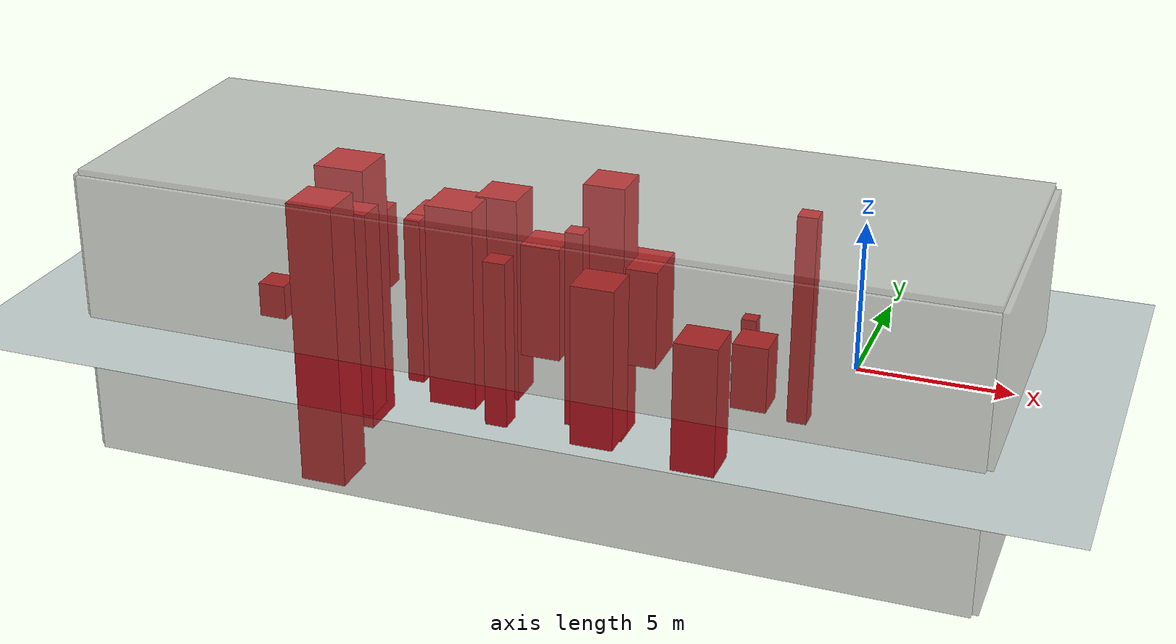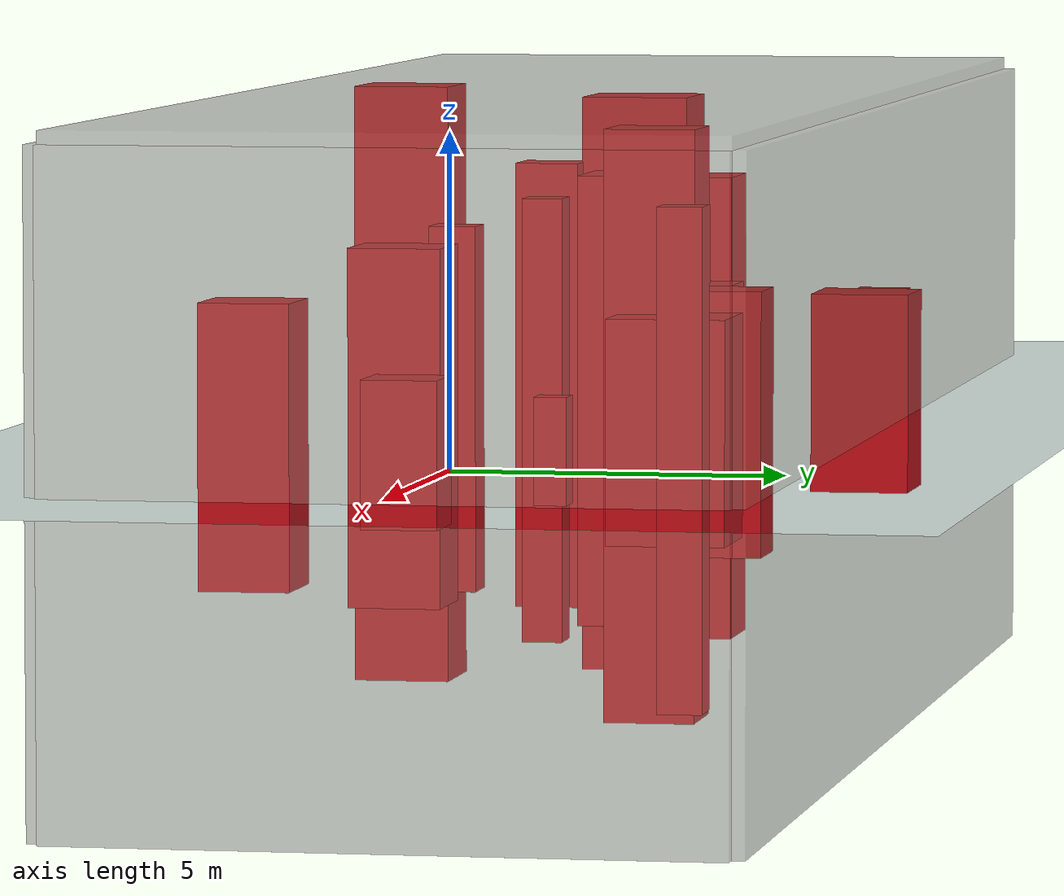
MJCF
<mujoco model="Skydio X2 scene">

  <statistic center="0 0 0.1" extent="2.0" meansize=".05"/>

  <visual>
    <headlight diffuse="0.6 0.6 0.6" ambient="0.3 0.3 0.3" specular="0 0 0"/>
    <rgba haze="0.15 0.25 0.35 1"/>
    <global azimuth="-20" elevation="-20" ellipsoidinertia="true"/>
  </visual>

  <asset>
    <texture type="skybox" builtin="gradient" rgb1="0.3 0.5 0.7" rgb2="0 0 0" width="512" height="3072"/>
    <texture type="2d" name="groundplane" builtin="checker" mark="edge" rgb1="0.2 0.3 0.4" rgb2="0.1 0.2 0.3"
      markrgb="0.8 0.8 0.8" width="300" height="300"/>
    <material name="groundplane" texture="groundplane" texuniform="true" texrepeat="5 5" reflectance="0.2"/>
  </asset>

  <worldbody>
    <light pos="0 0 1.5" dir="0 0 -1" directional="true"/>
    <geom name="floor" size="0 0 0.05" type="plane" material="groundplane"/>
    <geom name="walls_front" type="box" pos="5 0 0" size="0.2 5 5" rgba="0.5 0.5 0.5 0.5" contype="2" conaffinity="1"/>
    <geom name="walls_left" type="box" pos="-10 5 0" size="15 0.2 5" rgba="0.5 0.5 0.5 0.5" contype="2" conaffinity="1"/>
    <geom name="walls_right" type="box" pos="-10 -5 0" size="15 0.2 5" rgba="0.5 0.5 0.5 0.5" contype="2" conaffinity="1"/>
    <geom name="walls_back" type="box" pos="-25 0 0" size="0.2 5 5" rgba="0.5 0.5 0.5 0.5" contype="2" conaffinity="1"/>
    <geom name="walls_ceiling" type="box" pos="-10 0 5" size="15 5 0.2" rgba="0.5 0.5 0.5 0.5" contype="2" conaffinity="1"/>

    <body name="goal" mocap="true" pos="-21.575131420539687 3.867463229606937 3.2702755185782406">
      <geom type="sphere" size="0.1" contype="0" conaffinity="0" rgba="0 1 0 .5"/>
    </body>
    <geom name="box0" type="box" pos="-18.448940821631126 3.7814052746494786 0" size="0.42777096109334745 0.42777096109334745 1.536643463411234" rgba="1 0 0 1"/>
<geom name="box1" type="box" pos="-11.231636853009144 1.756981143490341 0" size="0.7034970974208901 0.7034970974208901 2.0697585984983475" rgba="1 0 0 1"/>
<geom name="box2" type="box" pos="-7.891192131036135 -2.3072289463082463 0" size="0.7342321117493771 0.7342321117493771 2.8251946174292204" rgba="1 0 0 1"/>
<geom name="box3" type="box" pos="-3.768835164907159 0.846180698193173 0" size="0.24971651910833562 0.24971651910833562 0.8250055702595454" rgba="1 0 0 1"/>
<geom name="box4" type="box" pos="-15.279635989941848 -0.09424609189910793 0" size="0.2889971464951446 0.2889971464951446 3.0155937573593867" rgba="1 0 0 1"/>
<geom name="box5" type="box" pos="-17.58790053882466 -0.14253541764581623 0" size="0.8856169511328091 0.8856169511328091 4.804841465317817" rgba="1 0 0 1"/>
<geom name="box6" type="box" pos="-8.003747366581058 2.0043108041814612 0" size="0.9386005607917463 0.9386005607917463 1.7711447470667818" rgba="1 0 0 1"/>
<geom name="box7" type="box" pos="-3.02704468610278 -1.2775445049818668 0" size="0.586098418181297 0.586098418181297 1.1319518574115384" rgba="1 0 0 1"/>
<geom name="box8" type="box" pos="-9.471605111422162 2.60454313389424 0" size="0.6306473890721551 0.6306473890721551 2.104450129121912" rgba="1 0 0 1"/>
<geom name="box9" type="box" pos="-13.897545928587778 0.39972101261497617 0" size="0.8521080647528378 0.8521080647528378 3.681600383159504" rgba="1 0 0 1"/>
<geom name="box10" type="box" pos="-16.231032082795796 3.842304178310994 0" size="0.8071401810426038 0.8071401810426038 1.6379001101715058" rgba="1 0 0 1"/>
<geom name="box11" type="box" pos="-11.424054690245129 -2.1417364371918595 0" size="0.3824193009376929 0.3824193009376929 2.950692255244024" rgba="1 0 0 1"/>
<geom name="box12" type="box" pos="-12.689424616859421 1.524589297021552 0" size="0.7361555769348498 0.7361555769348498 3.730665600063762" rgba="1 0 0 1"/>
<geom name="box13" type="box" pos="-9.390933461200442 -0.3034494149512632 0" size="0.31744870448016177 0.31744870448016177 3.522884478622043" rgba="1 0 0 1"/>
<geom name="box14" type="box" pos="-4.009270025621994 -3.857203738051342 0" size="0.7099240484754745 0.7099240484754745 2.2033477892875335" rgba="1 0 0 1"/>
<geom name="box15" type="box" pos="-16.780488968413092 -3.972170391836264 0" size="0.7931760980357219 0.7931760980357219 4.985681338078421" rgba="1 0 0 1"/>
<geom name="box16" type="box" pos="-2.504985054672069 3.0547575379904632 0" size="0.3440388965592005 0.3440388965592005 3.803572341318183" rgba="1 0 0 1"/>
<geom name="box17" type="box" pos="-16.69301406664291 -1.5352547353386408 0" size="0.529162498449976 0.529162498449976 3.7163026403848867" rgba="1 0 0 1"/>
<geom name="box18" type="box" pos="-8.886790781705479 1.5629530593697298 0" size="0.7224553725872416 0.7224553725872416 4.670339874686693" rgba="1 0 0 1"/>
<geom name="box19" type="box" pos="-19.84770269592696 -1.5092107708302054 0" size="0.4802457839266667 0.4802457839266667 0.6061821881858214" rgba="1 0 0 1"/>

        <body name="wp1" mocap="false" pos="0.0 0.0 0.1">
          <geom type="sphere" size="0.08" contype="0" conaffinity="0" rgba=".86 .86 .86 .5"/>
        </body>

        <body name="wp2" mocap="false" pos="-0.948550493506939 0.18914651542142044 0.353920375259011">
          <geom type="sphere" size="0.08" contype="0" conaffinity="0" rgba=".86 .86 .86 .5"/>
        </body>

        <body name="wp3" mocap="false" pos="-1.9053441328603449 0.09095864409340243 0.6276082880665326">
          <geom type="sphere" size="0.08" contype="0" conaffinity="0" rgba=".86 .86 .86 .5"/>
        </body>

        <body name="wp4" mocap="false" pos="-2.8170347121337724 0.3728545576431388 0.9265313242949936">
          <geom type="sphere" size="0.08" contype="0" conaffinity="0" rgba=".86 .86 .86 .5"/>
        </body>

        <body name="wp5" mocap="false" pos="-2.665622744576709 1.0199046679100234 1.6737933739697455">
          <geom type="sphere" size="0.08" contype="0" conaffinity="0" rgba=".86 .86 .86 .5"/>
        </body>

        <body name="wp6" mocap="false" pos="-3.559619441003222 1.0019142009653519 2.1215056140052333">
          <geom type="sphere" size="0.08" contype="0" conaffinity="0" rgba=".86 .86 .86 .5"/>
        </body>

        <body name="wp7" mocap="false" pos="-4.0897363357689125 0.16677313568353969 1.9748240576869909">
          <geom type="sphere" size="0.08" contype="0" conaffinity="0" rgba=".86 .86 .86 .5"/>
        </body>

        <body name="wp8" mocap="false" pos="-4.189672924098899 -0.8111155280562452 2.1585260980735383">
          <geom type="sphere" size="0.08" contype="0" conaffinity="0" rgba=".86 .86 .86 .5"/>
        </body>

        <body name="wp9" mocap="false" pos="-4.610043835894631 -1.424214802427095 1.4896482495227272">
          <geom type="sphere" size="0.08" contype="0" conaffinity="0" rgba=".86 .86 .86 .5"/>
        </body>

        <body name="wp10" mocap="false" pos="-5.606752598899941 -1.3926933769775889 1.564334536658017">
          <geom type="sphere" size="0.08" contype="0" conaffinity="0" rgba=".86 .86 .86 .5"/>
        </body>

        <body name="wp11" mocap="false" pos="-6.354703644917391 -0.7441918073631755 1.4228603447746742">
          <geom type="sphere" size="0.08" contype="0" conaffinity="0" rgba=".86 .86 .86 .5"/>
        </body>

        <body name="wp12" mocap="false" pos="-5.997905870147335 -0.6195138997850762 2.348684716500264">
          <geom type="sphere" size="0.08" contype="0" conaffinity="0" rgba=".86 .86 .86 .5"/>
        </body>

        <body name="wp13" mocap="false" pos="-5.795040287786981 -0.5635346177090452 3.3262898901117004">
          <geom type="sphere" size="0.08" contype="0" conaffinity="0" rgba=".86 .86 .86 .5"/>
        </body>

        <body name="wp14" mocap="false" pos="-6.163342097736893 -1.4929052421799187 3.351270265574003">
          <geom type="sphere" size="0.08" contype="0" conaffinity="0" rgba=".86 .86 .86 .5"/>
        </body>

        <body name="wp15" mocap="false" pos="-6.471044490528395 -2.4439112518777857 3.3211570294655286">
          <geom type="sphere" size="0.08" contype="0" conaffinity="0" rgba=".86 .86 .86 .5"/>
        </body>

        <body name="wp16" mocap="false" pos="-6.839730912724214 -3.3490432091735576 3.5275860123873293">
          <geom type="sphere" size="0.08" contype="0" conaffinity="0" rgba=".86 .86 .86 .5"/>
        </body>

        <body name="wp17" mocap="false" pos="-7.299874170210565 -3.059794856770899 3.9035354736741334">
          <geom type="sphere" size="0.08" contype="0" conaffinity="0" rgba=".86 .86 .86 .5"/>
        </body>

        <body name="wp18" mocap="false" pos="-8.28323249928814 -2.8800482805606573 3.9299469290383735">
          <geom type="sphere" size="0.08" contype="0" conaffinity="0" rgba=".86 .86 .86 .5"/>
        </body>

        <body name="wp19" mocap="false" pos="-9.248616261596156 -2.998039328850753 3.6973264140457696">
          <geom type="sphere" size="0.08" contype="0" conaffinity="0" rgba=".86 .86 .86 .5"/>
        </body>

        <body name="wp20" mocap="false" pos="-10.24037031521981 -3.0599187381723674 3.5850996978723884">
          <geom type="sphere" size="0.08" contype="0" conaffinity="0" rgba=".86 .86 .86 .5"/>
        </body>

        <body name="wp21" mocap="false" pos="-11.238997901873757 -3.1063636157083265 3.609303344795589">
          <geom type="sphere" size="0.08" contype="0" conaffinity="0" rgba=".86 .86 .86 .5"/>
        </body>

        <body name="wp22" mocap="false" pos="-12.06765422466069 -2.5472661834861454 3.5821232052116363">
          <geom type="sphere" size="0.08" contype="0" conaffinity="0" rgba=".86 .86 .86 .5"/>
        </body>

        <body name="wp23" mocap="false" pos="-13.000199106330726 -2.186264855355931 3.5882944902673186">
          <geom type="sphere" size="0.08" contype="0" conaffinity="0" rgba=".86 .86 .86 .5"/>
        </body>

        <body name="wp24" mocap="false" pos="-13.959618854767633 -1.9801589500875068 3.3958520258195164">
          <geom type="sphere" size="0.08" contype="0" conaffinity="0" rgba=".86 .86 .86 .5"/>
        </body>

        <body name="wp25" mocap="false" pos="-14.463069971238145 -2.783623799644624 3.1362344578686163">
          <geom type="sphere" size="0.08" contype="0" conaffinity="0" rgba=".86 .86 .86 .5"/>
        </body>

        <body name="wp26" mocap="false" pos="-15.22422536342243 -2.473199966686768 3.6076945305172705">
          <geom type="sphere" size="0.08" contype="0" conaffinity="0" rgba=".86 .86 .86 .5"/>
        </body>

        <body name="wp27" mocap="false" pos="-16.201376554240124 -2.6786982853566332 3.6619715174217022">
          <geom type="sphere" size="0.08" contype="0" conaffinity="0" rgba=".86 .86 .86 .5"/>
        </body>

        <body name="wp28" mocap="false" pos="-17.20056823487705 -2.6566288149688204 3.6955709790655953">
          <geom type="sphere" size="0.08" contype="0" conaffinity="0" rgba=".86 .86 .86 .5"/>
        </body>

        <body name="wp29" mocap="false" pos="-18.191561290284124 -2.5774395695878005 3.587581037168494">
          <geom type="sphere" size="0.08" contype="0" conaffinity="0" rgba=".86 .86 .86 .5"/>
        </body>

        <body name="wp30" mocap="false" pos="-18.65595376551618 -1.6928814702047734 3.5440310915458837">
          <geom type="sphere" size="0.08" contype="0" conaffinity="0" rgba=".86 .86 .86 .5"/>
        </body>

        <body name="wp31" mocap="false" pos="-19.10985587860784 -2.08553365278698 2.7441578920671437">
          <geom type="sphere" size="0.08" contype="0" conaffinity="0" rgba=".86 .86 .86 .5"/>
        </body>

        <body name="wp32" mocap="false" pos="-19.27125122141242 -2.587671900027363 1.8945646223319441">
          <geom type="sphere" size="0.08" contype="0" conaffinity="0" rgba=".86 .86 .86 .5"/>
        </body>

        <body name="wp33" mocap="false" pos="-19.870970039363524 -2.0704826261963967 1.2839480532564496">
          <geom type="sphere" size="0.08" contype="0" conaffinity="0" rgba=".86 .86 .86 .5"/>
        </body>

        <body name="wp34" mocap="false" pos="-20.83838068639624 -1.8323163071283148 1.1979629122767046">
          <geom type="sphere" size="0.08" contype="0" conaffinity="0" rgba=".86 .86 .86 .5"/>
        </body>

        <body name="wp35" mocap="false" pos="-21.42312927491128 -1.0562815506539323 0.9616598336395137">
          <geom type="sphere" size="0.08" contype="0" conaffinity="0" rgba=".86 .86 .86 .5"/>
        </body>

        <body name="wp36" mocap="false" pos="-20.94306342134079 -0.19073979737068403 0.8189214381077028">
          <geom type="sphere" size="0.08" contype="0" conaffinity="0" rgba=".86 .86 .86 .5"/>
        </body>

        <body name="wp37" mocap="false" pos="-21.370525299632305 0.5117588790324862 1.3879310621557355">
          <geom type="sphere" size="0.08" contype="0" conaffinity="0" rgba=".86 .86 .86 .5"/>
        </body>

        <body name="wp38" mocap="false" pos="-21.423627961609526 1.3826850909844384 1.8764672845855122">
          <geom type="sphere" size="0.08" contype="0" conaffinity="0" rgba=".86 .86 .86 .5"/>
        </body>

        <body name="wp39" mocap="false" pos="-21.47673062358675 2.2536113029363904 2.3650035070152886">
          <geom type="sphere" size="0.08" contype="0" conaffinity="0" rgba=".86 .86 .86 .5"/>
        </body>

        <body name="wp40" mocap="false" pos="-21.3896187820563 3.128299650143539 1.8882102370069964">
          <geom type="sphere" size="0.08" contype="0" conaffinity="0" rgba=".86 .86 .86 .5"/>
        </body>

        <body name="wp41" mocap="false" pos="-21.50716181960322 3.5966425786064034 2.763903411402613">
          <geom type="sphere" size="0.08" contype="0" conaffinity="0" rgba=".86 .86 .86 .5"/>
        </body>

        <body name="wp42" mocap="false" pos="-21.575131420539687 3.867463229606937 3.2702755185782406">
          <geom type="sphere" size="0.08" contype="0" conaffinity="0" rgba=".86 .86 .86 .5"/>
        </body>

        <body name="wp43" mocap="false" pos="-21.575131420539687 3.867463229606937 3.2702755185782406">
          <geom type="sphere" size="0.08" contype="0" conaffinity="0" rgba=".86 .86 .86 .5"/>
        </body>

    </worldbody>
        <keyframe>
          <key name="home" mpos ="0 0 0.1"/>
          <key mpos ="0.0 0.0 0.1"/>
          <key mpos ="-0.948550493506939 0.18914651542142044 0.353920375259011"/>
          <key mpos ="-1.9053441328603449 0.09095864409340243 0.6276082880665326"/>
          <key mpos ="-2.8170347121337724 0.3728545576431388 0.9265313242949936"/>
          <key mpos ="-2.665622744576709 1.0199046679100234 1.6737933739697455"/>
          <key mpos ="-3.559619441003222 1.0019142009653519 2.1215056140052333"/>
          <key mpos ="-4.0897363357689125 0.16677313568353969 1.9748240576869909"/>
          <key mpos ="-4.189672924098899 -0.8111155280562452 2.1585260980735383"/>
          <key mpos ="-4.610043835894631 -1.424214802427095 1.4896482495227272"/>
          <key mpos ="-5.606752598899941 -1.3926933769775889 1.564334536658017"/>
          <key mpos ="-6.354703644917391 -0.7441918073631755 1.4228603447746742"/>
          <key mpos ="-5.997905870147335 -0.6195138997850762 2.348684716500264"/>
          <key mpos ="-5.795040287786981 -0.5635346177090452 3.3262898901117004"/>
          <key mpos ="-6.163342097736893 -1.4929052421799187 3.351270265574003"/>
          <key mpos ="-6.471044490528395 -2.4439112518777857 3.3211570294655286"/>
          <key mpos ="-6.839730912724214 -3.3490432091735576 3.5275860123873293"/>
          <key mpos ="-7.299874170210565 -3.059794856770899 3.9035354736741334"/>
          <key mpos ="-8.28323249928814 -2.8800482805606573 3.9299469290383735"/>
          <key mpos ="-9.248616261596156 -2.998039328850753 3.6973264140457696"/>
          <key mpos ="-10.24037031521981 -3.0599187381723674 3.5850996978723884"/>
          <key mpos ="-11.238997901873757 -3.1063636157083265 3.609303344795589"/>
          <key mpos ="-12.06765422466069 -2.5472661834861454 3.5821232052116363"/>
          <key mpos ="-13.000199106330726 -2.186264855355931 3.5882944902673186"/>
          <key mpos ="-13.959618854767633 -1.9801589500875068 3.3958520258195164"/>
          <key mpos ="-14.463069971238145 -2.783623799644624 3.1362344578686163"/>
          <key mpos ="-15.22422536342243 -2.473199966686768 3.6076945305172705"/>
          <key mpos ="-16.201376554240124 -2.6786982853566332 3.6619715174217022"/>
          <key mpos ="-17.20056823487705 -2.6566288149688204 3.6955709790655953"/>
          <key mpos ="-18.191561290284124 -2.5774395695878005 3.587581037168494"/>
          <key mpos ="-18.65595376551618 -1.6928814702047734 3.5440310915458837"/>
          <key mpos ="-19.10985587860784 -2.08553365278698 2.7441578920671437"/>
          <key mpos ="-19.27125122141242 -2.587671900027363 1.8945646223319441"/>
          <key mpos ="-19.870970039363524 -2.0704826261963967 1.2839480532564496"/>
          <key mpos ="-20.83838068639624 -1.8323163071283148 1.1979629122767046"/>
          <key mpos ="-21.42312927491128 -1.0562815506539323 0.9616598336395137"/>
          <key mpos ="-20.94306342134079 -0.19073979737068403 0.8189214381077028"/>
          <key mpos ="-21.370525299632305 0.5117588790324862 1.3879310621557355"/>
          <key mpos ="-21.423627961609526 1.3826850909844384 1.8764672845855122"/>
          <key mpos ="-21.47673062358675 2.2536113029363904 2.3650035070152886"/>
          <key mpos ="-21.3896187820563 3.128299650143539 1.8882102370069964"/>
          <key mpos ="-21.50716181960322 3.5966425786064034 2.763903411402613"/>
          <key mpos ="-21.575131420539687 3.867463229606937 3.2702755185782406"/>
          <key mpos ="-21.575131420539687 3.867463229606937 3.2702755185782406"/>
          </keyframe>
  </mujoco>
